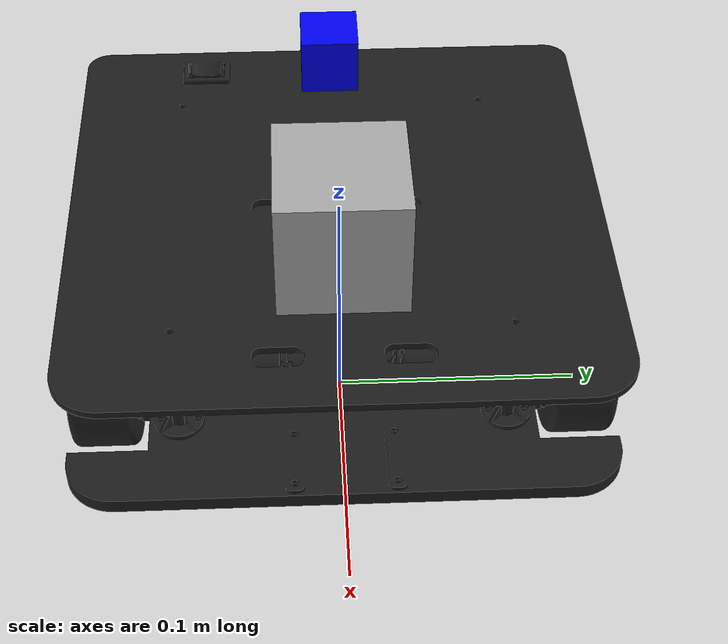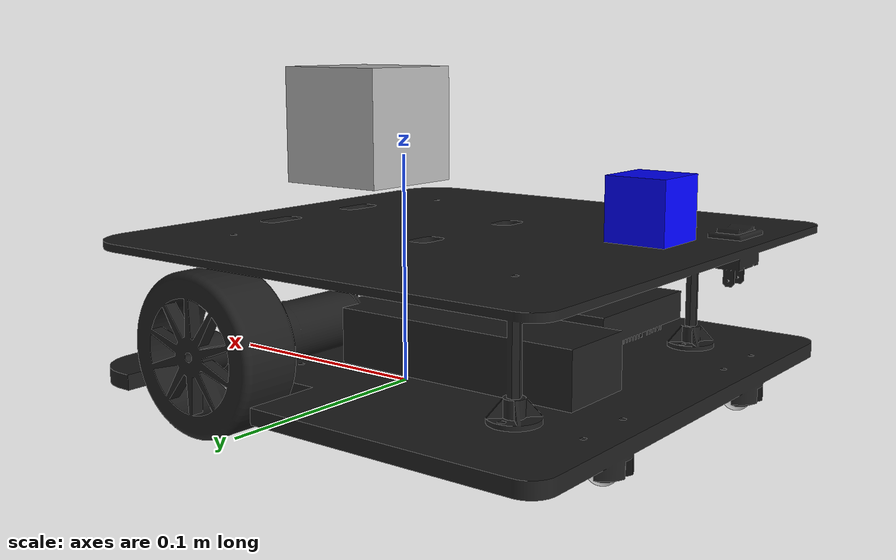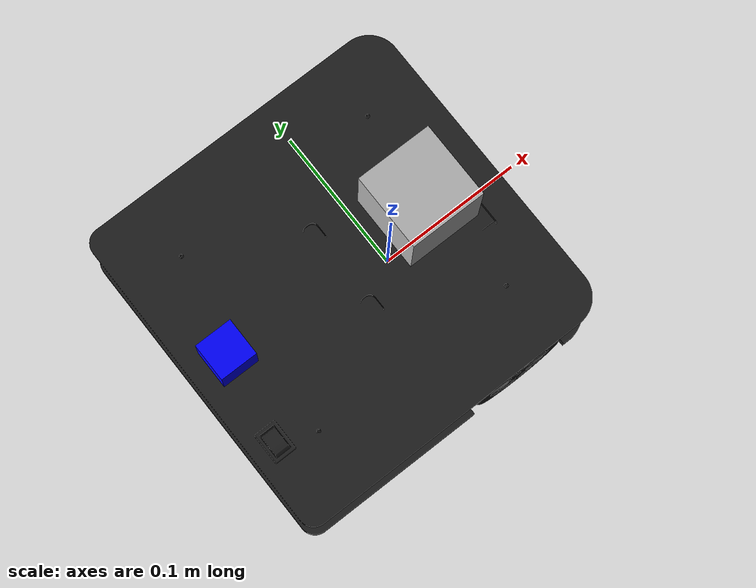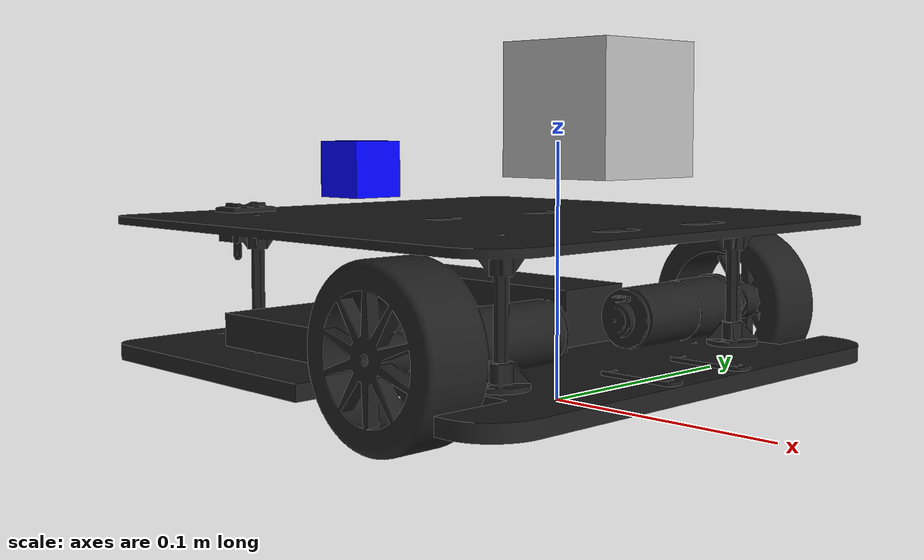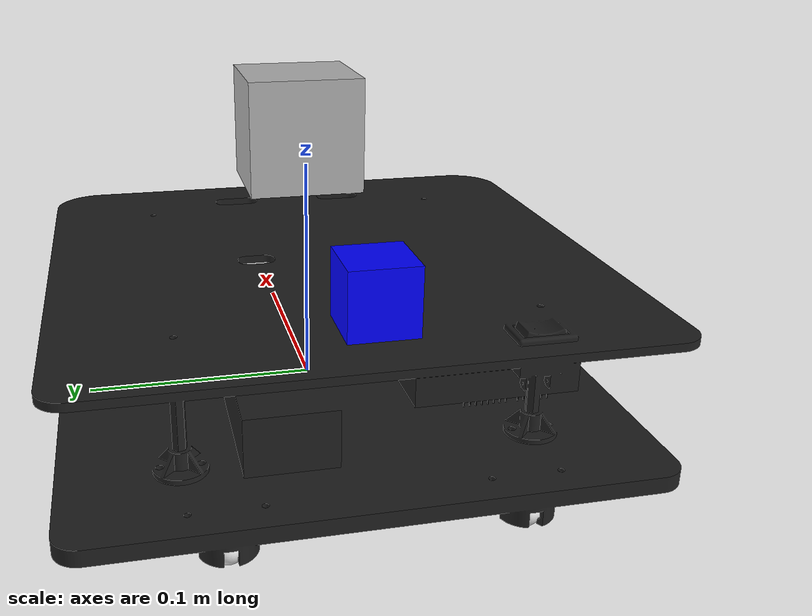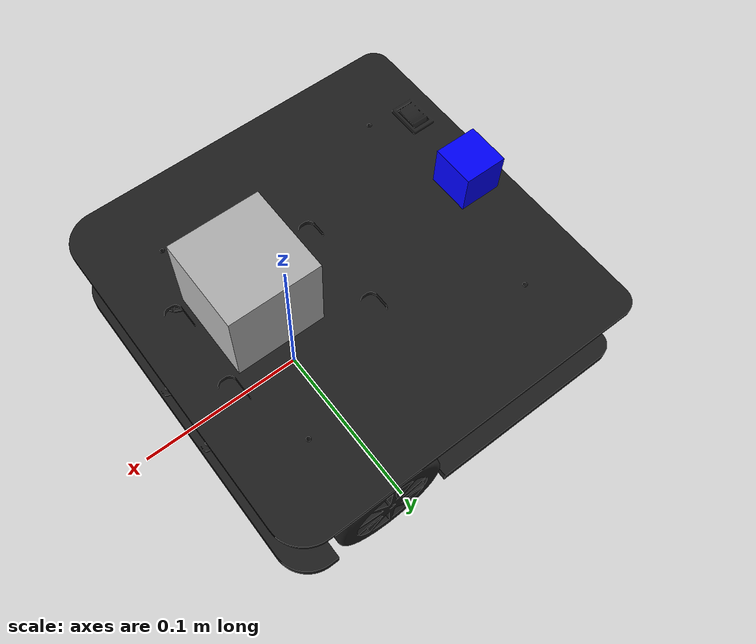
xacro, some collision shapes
<?xml version='1.0'?>

<robot name="my_bot" xmlns:xacro="http://www.ros.org/wiki/xacro">
  <xacro:include filename="$(find my_bot)/urdf/my_bot.gazebo"/>
  <xacro:include filename="$(find my_bot)/urdf/common_properties.xacro"/>

  <link name="robot_footprint"></link>

  <joint name="robot_footprint_joint" type="fixed">
    <parent link="robot_footprint"/>
    <child link="chasis" />
    <origin xyz="0 0 0.0122" rpy="0 0 0"/>
  </joint>

  <link name="chasis">
    <visual>
      <origin xyz="-0.035 0 0.0" rpy="0 0 0"/>
      <geometry>
        <mesh filename="package://my_bot/meshes/platform_mesh.stl" scale="0.001 0.001 0.001"/>
      </geometry>
      <material name="light_black"/>
    </visual>

    <collision>
      <origin xyz="-0.035 0 0.02901" rpy="0 0 0"/>
      <geometry>
        <box size="0.220 0.220 0.05802"/>
      </geometry>
    </collision>

    <inertial>
      <origin xyz="0 0 0" rpy="0 0 0"/>
    <mass value="0.881e+00"/>
    <inertia ixx="3.0e-03" ixy="0" ixz="0"
         iyy="3.0e-03" iyz="0"
         izz="6.0e-03" />
    </inertial>
  </link>

  <link name="wheel_left_link">
    <visual>
      <origin xyz="0 0 -0.0085" rpy="0 1.57 0"/>
      <geometry>
        <mesh filename="package://my_bot/meshes/wheel_mesh.stl" scale="0.001 0.001 0.001"/>
      </geometry>
      <material name="dark"/>
    </visual>

    <collision>
      <origin xyz="0 0 0.0045" rpy="0 0 0"/>
      <geometry>
        <cylinder length="0.026" radius="0.0325"/>
      </geometry>
    </collision>

    <inertial>
      <origin xyz="0 0 0" />
    <mass value="3.3e-02" />
      <inertia ixx="1e-05" ixy="0.0" ixz="0.0"
               iyy="1e-05" iyz="0.0"
               izz="1e-05" />
    </inertial>
  </link>

  <link name="wheel_right_link">
  <visual>
    <origin xyz="0 0 0.0085" rpy="0 -1.57 0"/>
    <geometry>
    <mesh filename="package://my_bot/meshes/wheel_mesh.stl" scale="0.001 0.001 0.001"/>
    </geometry>
    <material name="dark"/>
  </visual>

  <collision>
    <origin xyz="0 0 -0.0045" rpy="0 0 0"/>
    <geometry>
    <cylinder length="0.026" radius="0.0325"/>
    </geometry>
  </collision>

  <inertial>
    <origin xyz="0 0 0" />
    <mass value="3.3e-02" />
      <inertia ixx="1e-05" ixy="0.0" ixz="0.0"
               iyy="1e-05" iyz="0.0"
               izz="1e-05" />
    </inertial>
  </link>

  <link name="caster_back_right_link">
  <visual>
    <origin xyz="0 0 0" rpy="0 0 0"/>
    <geometry>
    <mesh filename="package://my_bot/meshes/caster_ball_mesh.stl" scale="0.001 0.001 0.001"/>
    </geometry>
    <material name="white"/>
  </visual>
  <collision>
    <origin xyz="0.000575 0 0" rpy="0 0 0"/>
    <geometry>
    <box size="0.01385 0.013 0.013"/>
    </geometry>
  </collision>

  <inertial>
    <origin xyz="0 0 0" />
    <mass value="8.37e-03" />
      <inertia ixx="1e-03" ixy="0.0" ixz="0.0"
               iyy="1e-03" iyz="0.0"
               izz="1e-03" />
    </inertial>
  </link>

  <link name="caster_back_left_link">
  <visual>
    <origin xyz="0 0 0" rpy="0 0 0"/>
    <geometry>
    <mesh filename="package://my_bot/meshes/caster_ball_mesh.stl" scale="0.001 0.001 0.001"/>
    </geometry>
    <material name="white"/>
  </visual>
  <collision>
    <origin xyz="0.000575 0 0" rpy="0 0 0"/>
    <geometry>
    <box size="0.01385 0.013 0.013"/>
    </geometry>
  </collision>

  <inertial>
    <origin xyz="0 0 0" />
    <mass value="8.37e-03" />
      <inertia ixx="1e-03" ixy="0.0" ixz="0.0"
               iyy="1e-03" iyz="0.0"
               izz="1e-03" />
    </inertial>
  </link>

  <!-- Camera Link -->

  <link name="camera">

    <inertial>
      <mass value="0.1"/>
      <origin xyz="0 0 0" rpy="0 0 0"/>
      <inertia
          ixx="1e-6" ixy="0" ixz="0"
          iyy="1e-6" iyz="0"
          izz="1e-6"
      />
    </inertial>
    <visual>
      <geometry>
        <box size="0.025 0.025 0.025"/>
      </geometry>
      <origin xyz="0 0 0" rpy="0 0 0"/>
      <material name="red">
        <color rgba="0 0 1 1"/>
      </material>
    </visual>
    <collision>
      <geometry>
        <box size="0.025 0.025 0.025"/>
      </geometry>
      <origin xyz="0 0 0" rpy="0 0 0"/>
    </collision>
  </link>

  <!-- Hokuyo Link -->

  <link name="hokuyo">

    <inertial>
      <mass value="0.1"/>
      <origin xyz="0 0 0" rpy="0 0 0"/>
      <inertia
          ixx="1e-6" ixy="0" ixz="0"
          iyy="1e-6" iyz="0"
          izz="1e-6"
      />
    </inertial>
    <visual>
      <geometry>
        <mesh filename="package://my_bot/meshes/hokuyo.dae"/>
      </geometry>
      <origin xyz="0 0 0" rpy="0 0 0"/>
    </visual>
    <collision>
      <geometry>
        <box size="0.05 0.05 0.05"/>
      </geometry>
      <origin xyz="0 0 0" rpy="0 0 0"/>
    </collision>
  </link>

  <!-- Joints -->

  <joint name="wheel_right_joint" type="continuous">
    <parent link="chasis"/>
    <child link="wheel_right_link"/>
    <origin xyz="0.015 0.09975 0.0188" rpy="-1.57 0 0"/>
    <axis xyz="0 0 1"/>
  </joint>

  <joint name="wheel_left_joint" type="continuous">
    <parent link="chasis"/>
    <child link="wheel_left_link"/>
    <origin xyz="0.015 -0.09975 0.0188" rpy="-1.57 0 0"/>
    <axis xyz="0 0 1"/>
  </joint>

  <joint name="caster_back_right_joint" type="fixed">
  <parent link="chasis"/>
  <child link="caster_back_right_link"/>
  <origin xyz="-0.133 0.053 -0.0075" rpy="-1.57 0 0"/>
  </joint>

  <joint name="caster_back_left_joint" type="fixed">
  <parent link="chasis"/>
  <child link="caster_back_left_link"/>
  <origin xyz="-0.133 -0.053 -0.0075" rpy="-1.57 0 0"/>
  </joint>

  <joint type="fixed" name="camera_joint">
    <origin xyz="-0.12 0 0.075" rpy="0 0 3.14"/>
    <child link="camera"/>
    <parent link="chasis"/>
  </joint>

  <joint type="fixed" name="hokuyo_joint">
    <origin xyz="0.02 0 0.1" rpy="0 0 3.14"/>
    <child link="hokuyo"/>
    <parent link="chasis"/>
  </joint>

</robot>
